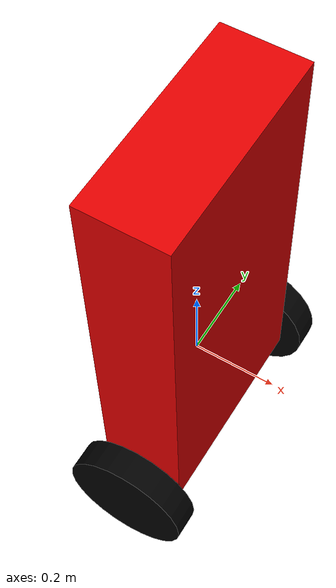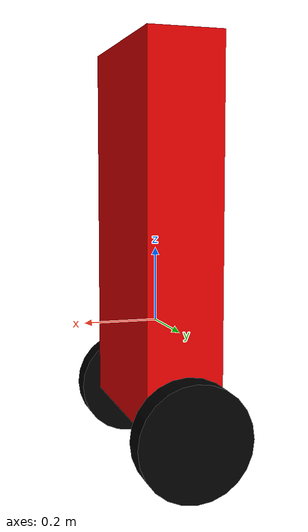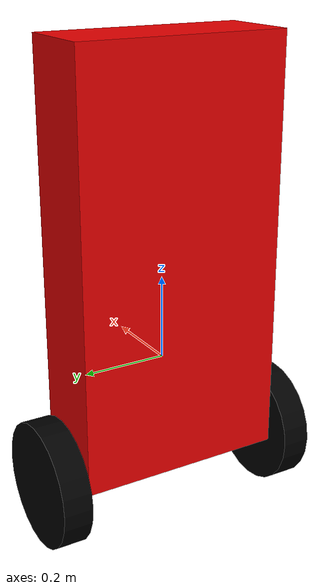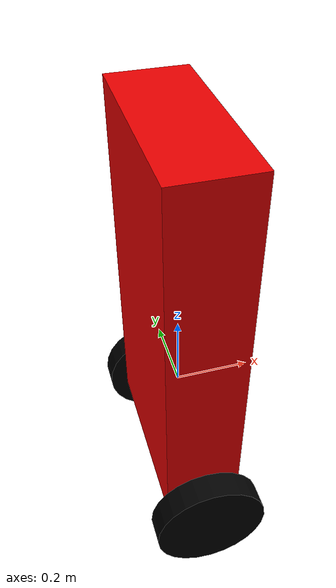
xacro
<?xml version="1.0"?>

<!--Defining Robot-->
<robot name = "balance_bot" xmlns:xacro="http://www.ros.org/wiki/xacro">

	<!--Defining Constants-->
	<property name = "deg_to_rad" value = "0.01745329251994329577"/>
	<property name= "M_PI" value = "3.14159"/>
	<property name = "M_SCALE" value = "0.1 0.1 0.1"/>

	<!-- Body Properties -->
	<property name = "body_length" value = "0.5"/>
	<property name = "body_width" value = "0.2"/>
	<property name = "body_height" value = "1.0"/>
	<property name = "body_mass" value = "5.0"/>

	<!-- Wheel Properties -->
	<property name = "wheel_radius" value = "0.15"/>
	<property name = "wheel_width" value = "0.07"/>
	<property name = "wheel_mass" value = "0.5"/>

	<!--Defining Materials-->
	<!--Black Material-->
	<material name = "black">
		<color rgba = "0 0 0 1"/>
	</material>

	<!--Red Material-->
	<material name = "red">
		<color rgba = "0.9 0 0 1"/>
	</material>

	<!--Defining Marcos for Transmission of Box-->
	<xacro:macro name = "transmission_block" params = "joint_name">
		<transmission name = "t1">
			<!--Type of Transmission-->
			<type>transmission_interace/SimpleTransmission</type>
			<!--Joint for transmission-->
			<joint name = "${joint_name}">
				<hardwareInterface>hardware_interface/EffortJointInterface</hardwareInterface>
			</joint>
			<!--Actuator-->
			<actuator name = "${joint_name}_motor">
				<hardwareInterface>hardware_interface/EffortJointInterface</hardwareInterface>
				<mechanicalReduction>1</mechanicalReduction>
			</actuator>
		</transmission>
	</xacro:macro>

	<!-- Wheel Marco  -->
	<xacro:macro name = "wheel" params = "name parent jx jy jz">
		<link name = "${name}">
			<!-- Interial -->
			<inertial>
				<origin xyz="0 0 0" rpy="0 0 0"/>
				<mass value="${wheel_mass}"/>
				<inertia ixx="${wheel_mass/12*(3*wheel_radius*wheel_radius + wheel_width*wheel_width)}" ixy="0" ixz="0" iyy="${wheel_mass/12*(3*wheel_radius*wheel_radius + wheel_width*wheel_width)}" iyz="0" izz="${wheel_mass/2 * wheel_radius*wheel_radius}"/>
			</inertial>
			<!-- Visualization of robot -->
			<visual>
				<origin xyz = "0 0 0" rpy = "0 0 0"/>
				<geometry>
					<cylinder radius = "${wheel_radius}" length = "${wheel_width}"/>
				</geometry>
				<material name = "black">
				</material>
			</visual>
			<!-- Collisions -->
			<collision>
				<origin xyz="0 0 0" rpy="0 0 0"/>
				<geometry>
					<cylinder radius = "${wheel_radius}" length = "${wheel_width}"/>
				</geometry>
			</collision>
		</link>

		<joint name = "${name}_joint" type = "continuous">
			<!--Origin-->
			<origin xyz="${jx} ${jy} ${jz}" rpy="${M_PI/2} 0 0"/>
			<!--Parent Link-->
			<parent link="${parent}"/>
			<!--Child Link-->
			  <child link="${name}"/>
			<!-- Axis -->
			<axis xyz="0 0 1" />
		</joint>

		<xacro:transmission_block joint_name = "${name}_joint"/>
	</xacro:macro>

	<!-- Base Link -->
	<link name="base_link">
		<inertial>
		  <origin xyz="0 0 0" rpy="0 0 0"/>
		  <mass value="0.01"/>
		  <inertia ixx="0.01" ixy="0" ixz="0" iyy="0.01" iyz="0" izz="0.01"/>
		</inertial>
	</link>

	<!-- Body -->
	<link name = "body">
		<!-- Interia -->
		<inertial>
			<origin xyz="0 0 0" rpy="0 0 0"/>
			<mass value="${body_mass}"/>
			<inertia ixx="${body_mass/12 * (body_length*body_length + body_height*body_height)}" ixy="0" ixz="0" iyy="${body_mass/12 * (body_width*body_width + body_height*body_height)}" iyz="0" izz="${body_mass/12 * (body_width*body_width + body_length*body_length)}"/>
		</inertial>

		<!--Visualisation of robot-->
		<visual>
			<!--Origin-->
			<origin xyz = "0 0 0" rpy = "0 0 0"/>
			<!--Geometry-->
			<geometry>
				<!--Box-->
				<box size = "${body_width} ${body_length} ${body_height}"/>
			</geometry>
			<!--Material-->
			<material name = "red"/>
		</visual>
		<!--Collision-->
		<collision>
			<!--Origin-->
			<origin xyz = "0 0 0" rpy = "0 0 0"/>
			<!--Geometry-->
			<geometry>
				<box size = "${body_width} ${body_length} ${body_height}"/>
			</geometry>
		</collision>
	</link>

	<joint name="base_com" type="fixed">
		<origin xyz="0 0 ${body_length/2}" rpy="0 0 0"/>
		<parent link="base_link"/>
		<child link="body"/>
	</joint>

	<!-- Wheels -->
	<xacro:wheel name = "left_wheel" parent = "body" jx = "0.0" jy = "${body_length/2 + 0.05}" jz = "-${body_height/2}"/>
	<xacro:wheel name = "right_wheel" parent = "body" jx = "0.0" jy = "-${body_length/2 + 0.05}" jz = "-${body_height/2}"/>

	<!-- IMU -->
	<link name="imu_link">
		<!-- Interia -->
		<inertial>
			<mass value="1e-5" />
			<origin xyz="0 0 0" rpy="0 0 0"/>
			<inertia ixx="0" ixy="0" ixz="0" iyy="0" iyz="0" izz="0" />
		</inertial>
		<!-- Visual -->
		<visual>
			<origin xyz="0 0 0" rpy="0 0 0"/>
			<geometry>
				<box size="0.02 0.015 0.008"/>
			</geometry>
			<!--Material-->
			<material name = "black"/>
		</visual>
		<!-- Collision  -->
		<collision>
			<origin xyz="0 0 0" rpy="0 0 0"/>
			<geometry>
				<box size="0.02 0.015 0.008"/>
			</geometry>
		</collision>
	</link>

	<joint name="imu_joint" type="fixed">
		<!-- Origin  -->
		<origin xyz="0 0 ${body_length/2}" rpy="0 0 0" />
		<!-- Parent  -->
		<parent link="body" />
		<!-- Child  -->
		<child link="imu_link" />
	</joint>

	<!--Adding Gazebo reference-->
	<gazebo reference = "body">
		<material>Gazebo/Red</material>
	</gazebo>

	<gazebo reference = "imu_link">
		<material>Gazebo/Black</material>
	</gazebo>

	<gazebo reference = "left_wheel">
		<material>Gazebo/Black</material>
		<mu1>0.5</mu1>
		<mu2>0.5</mu2>
	</gazebo>

	<gazebo reference = "right_wheel">
		<material>Gazebo/Black</material>
		<mu1>0.5</mu1>
		<mu2>0.5</mu2>
	</gazebo>

	<!-- IMU Plugin  -->
	<gazebo reference="imu_link">
		<gravity>true</gravity>
		<sensor name="imu_sensor" type="imu">
			<always_on>true</always_on>
			<update_rate>100</update_rate>
			<visualize>true</visualize>
			<topic>imu_data</topic>
			<plugin filename="libgazebo_ros_imu_sensor.so" name="imu_plugin">
				<topicName>imu</topicName>
				<bodyName>imu_link</bodyName>
				<updateRateHZ>200.0</updateRateHZ>
				<gaussianNoise>0.0</gaussianNoise>
				<xyzOffset>0 0 0</xyzOffset>
				<rpyOffset>0 0 0</rpyOffset>
				<frameName>imu_link</frameName>
				<initialOrientationAsReference>false</initialOrientationAsReference>
			</plugin>
			<pose>0 0 0 0 0 0</pose>
		</sensor>
	</gazebo>

  	<!-- ros_control plugin -->
	<gazebo>
		<plugin name="gazebo_ros_control" filename="libgazebo_ros_control.so">
			<robotNamespace>/balance_bot</robotNamespace>
		</plugin>
	</gazebo>

</robot>
